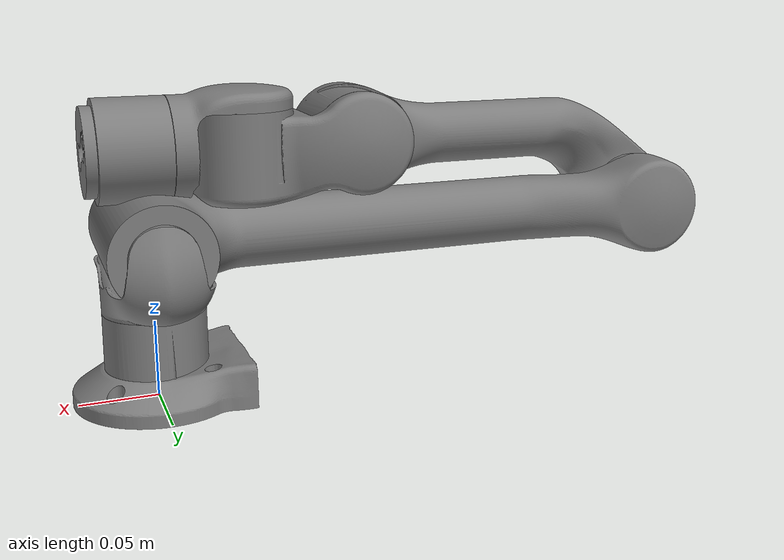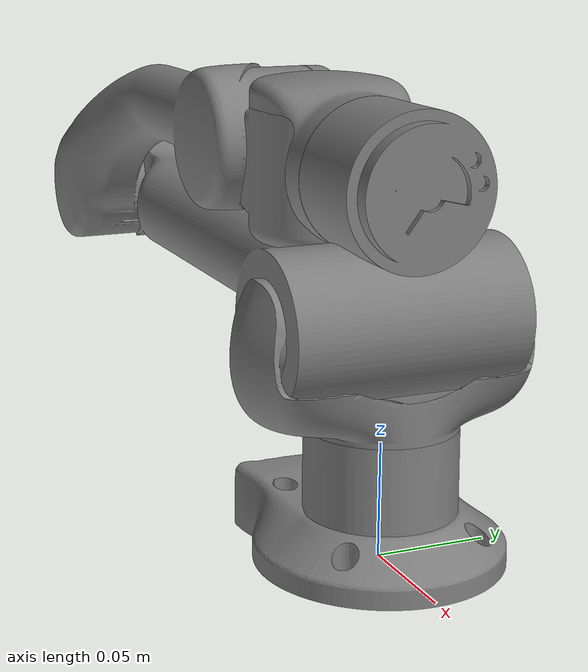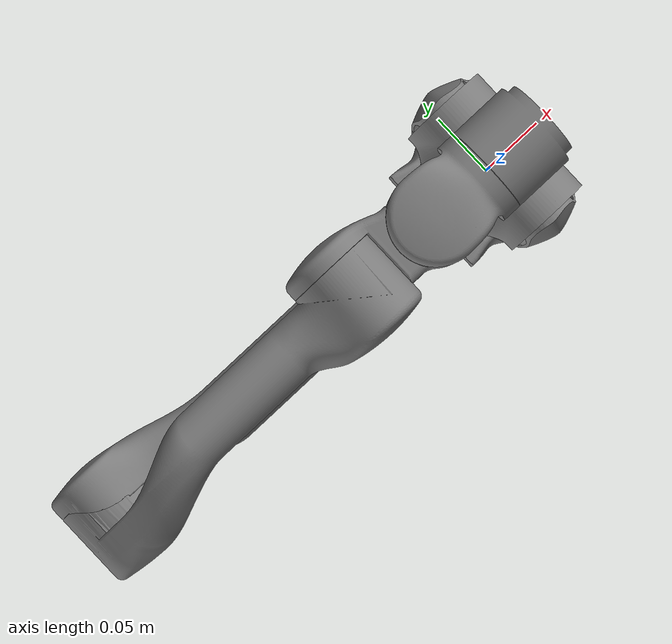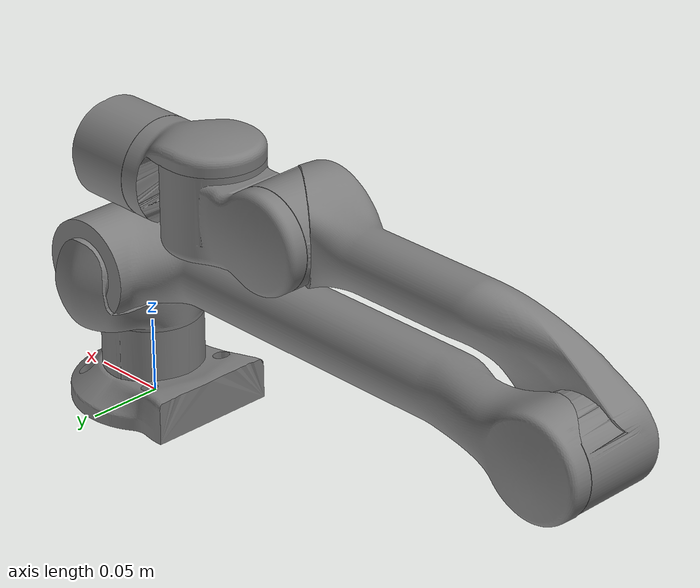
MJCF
<?xml version="1.0" ?>
<mujoco model="z1">
	<compiler meshdir="z1/meshes" texturedir="z1/textures" angle="radian" autolimits="true" balanceinertia="true" boundmass="0.000001" boundinertia="0.000001"/>
	<default>
		<default class="visual">
			<geom contype="0" conaffinity="0"/>
		</default>
		<default class="collision">
			<geom rgba="1.0 0.0 0.0 0.0"/>
		</default>
	</default>
	<asset>
		<mesh name="z1_Link00" file="stl/z1_Link00.stl" scale="1.0 1.0 1.0"/>
		<mesh name="z1_Link01" file="stl/z1_Link01.stl" scale="1.0 1.0 1.0"/>
		<mesh name="z1_Link02" file="stl/z1_Link02.stl" scale="1.0 1.0 1.0"/>
		<mesh name="z1_Link03" file="stl/z1_Link03.stl" scale="1.0 1.0 1.0"/>
		<mesh name="z1_Link04" file="stl/z1_Link04.stl" scale="1.0 1.0 1.0"/>
		<mesh name="z1_Link05" file="stl/z1_Link05.stl" scale="1.0 1.0 1.0"/>
		<mesh name="z1_Link06" file="stl/z1_Link06.stl" scale="1.0 1.0 1.0"/>
	</asset>
	<worldbody>
		<body name="z1" pos="0.0 0.0 0.0" quat="1.0 0.0 0.0 0.0">
			<body name="link00" pos="0.0 0.0 0.0" quat="1.0 0.0 0.0 0.0">
				<geom name="Geom_0" type="mesh" pos="-0.005520758684724569 1.8631500608989882e-07 0.0215991772711277" quat="1.0212026609224267e-05 0.680168092250824 -1.1006088243448175e-05 0.7330561876296997" mesh="z1_Link00" class="visual"/>
				<geom name="Geom_1" type="cylinder" pos="0.0 0.0 0.025499999523162842" quat="1.0 0.0 0.0 0.0" size="0.032499998807907104 0.025499999523162842 0.0" class="collision"/>
				<body name="link01" pos="0.0 0.0 0.05849999934434891" quat="1.0 0.0 0.0 0.0">
					<inertial mass="0.6733260154724121" pos="2.4700000267330324e-06 -0.00025198000366799533 0.023171700537204742" quat="0.7085776925086975 0.7056326866149902 0.00028146186377853155 -0.00035592683707363904" diaginertia="0.001283279969356954 0.0008393619791604578 0.0007193079800345004"/>
					<geom name="Geom_2" type="mesh" pos="-1.1448399561686529e-08 1.5960639032641666e-08 0.02298690192401409" quat="0.5 0.5 -0.5 0.5" mesh="z1_Link01" class="visual"/>
					<joint name="joint1" type="hinge" pos="0.0 0.0 0.0" range="-2.617990016937256 2.617990016937256" axis="0.0 0.0 1.0"/>
					<body name="link02" pos="0.0 0.0 0.04500000178813934" quat="1.0 0.0 0.0 0.0">
						<inertial mass="1.1913199424743652" pos="-0.11012600362300873 0.002400289988145232 0.0015826600138098001" quat="0.0074805766344070435 0.7070916891098022 -0.011447294615209103 0.7069896459579468" diaginertia="0.024661200121045113 0.024311300367116928 0.001004679943434894"/>
						<geom name="Geom_3" type="mesh" pos="-0.12055718153715134 0.0042074634693562984 -1.9866467937390553e-06" quat="0.019285952672362328 0.7068355083465576 -0.01935543678700924 0.7068500518798828" mesh="z1_Link02" class="visual"/>
						<geom name="Geom_4" type="cylinder" pos="0.0 0.0 0.0" quat="0.7071067690849304 0.7071067690849304 0.0 0.0" size="0.032499998807907104 0.050999999046325684 0.0" class="collision"/>
						<geom name="Geom_5" type="cylinder" pos="-0.16249999403953552 0.0 0.0" quat="0.7071067690849304 0.0 0.7071067690849304 0.0" size="0.02250000089406967 0.11749999970197678 0.0" class="collision"/>
						<geom name="Geom_6" type="cylinder" pos="-0.3499999940395355 0.0 0.0" quat="0.7071067690849304 0.7071067690849304 0.0 0.0" size="0.032499998807907104 0.025499999523162842 0.0" class="collision"/>
						<joint name="joint2" type="hinge" pos="0.0 0.0 0.0" range="0.0 2.967060089111328" axis="0.0 1.0 0.0"/>
						<body name="link03" pos="-0.3499999940395355 0.0 0.0" quat="1.0 0.0 0.0 0.0">
							<inertial mass="0.8394089937210083" pos="0.10609199851751328 -0.005418150220066309 0.03476380184292793" quat="0.5405570864677429 0.44357505440711975 0.42631906270980835 0.5738390684127808" diaginertia="0.009543649852275848 0.009387110359966755 0.0005584320169873536"/>
							<geom name="Geom_7" type="mesh" pos="0.1013498529791832 -0.005292060319334269 0.03454930707812309" quat="0.570032000541687 0.4204105734825134 0.453186959028244 0.5412393808364868" mesh="z1_Link03" class="visual"/>
							<geom name="Geom_8" type="cylinder" pos="0.12800000607967377 0.0 0.054999999701976776" quat="0.7071067690849304 0.0 0.7071067690849304 0.0" size="0.019999999552965164 0.057999998331069946 0.0" class="collision"/>
							<geom name="Geom_9" type="cylinder" pos="0.22050000727176666 0.0 0.054999999701976776" quat="0.5 -0.5 0.5 0.5" size="0.032499998807907104 0.029500000178813934 0.0" class="collision"/>
							<joint name="joint3" type="hinge" pos="0.0 0.0 0.0" range="-2.8797900676727295 0.0" axis="0.0 1.0 0.0"/>
							<body name="link04" pos="0.21799999475479126 0.0 0.05700000002980232" quat="1.0 0.0 0.0 0.0">
								<inertial mass="0.5640460252761841" pos="0.04366679862141609 0.003647380042821169 -0.0017019199440255761" quat="0.03908350318670273 0.7264450192451477 -0.05267870053648949 0.6840870380401611" diaginertia="0.0009816560195758939 0.0009405299788340926 0.0003026550111826509"/>
								<geom name="Geom_10" type="mesh" pos="0.05102463439106941 0.007050307933241129 -0.005275116767734289" quat="0.5692657232284546 0.5872085094451904 0.44356632232666016 0.3665674030780792" mesh="z1_Link04" class="visual"/>
								<geom name="Geom_11" type="cylinder" pos="0.07199999690055847 0.0 0.0" quat="1.0 0.0 0.0 0.0" size="0.032499998807907104 0.03350000083446503 0.0" class="collision"/>
								<joint name="joint4" type="hinge" pos="0.0 0.0 0.0" range="-1.5184400081634521 1.5184400081634521" axis="0.0 1.0 0.0"/>
								<body name="link05" pos="0.07000000029802322 0.0 0.0" quat="1.0 0.0 0.0 0.0">
									<inertial mass="0.38938501477241516" pos="0.031215300783514977 0.0 0.006463159807026386" quat="0.46220502257347107 0.535209059715271 0.537850022315979 0.4589500427246094" diaginertia="0.0005589610082097352 0.0005473169730976224 0.0001673319929977879"/>
									<geom name="Geom_12" type="mesh" pos="0.022277723997831345 3.547329470166005e-07 0.01343035139143467" quat="-7.903884579718579e-06 0.8913171887397766 9.391856110596564e-06 0.4533802568912506" mesh="z1_Link05" class="visual"/>
									<joint name="joint5" type="hinge" pos="0.0 0.0 0.0" range="-1.3438999652862549 1.3438999652862549" axis="0.0 0.0 1.0"/>
									<body name="link06" pos="0.04919999837875366 0.0 0.0" quat="1.0 0.0 0.0 0.0">
										<inertial mass="0.2887580096721649" pos="0.024156900122761726 -0.0001735499972710386 -0.0014387599658221006" quat="0.9987789988517761 0.04577350243926048 -0.0066371699795126915 0.017354801297187805" diaginertia="0.0001833300048019737 0.00014746400120202452 0.00014678599836770445"/>
										<geom name="Geom_13" type="mesh" pos="0.024687860161066055 4.7171302867354825e-05 1.948836143128574e-05" quat="0.5553708076477051 0.8315573930740356 -0.004831449128687382 -0.007229561917483807" mesh="z1_Link06" class="visual"/>
										<geom name="Geom_14" type="cylinder" pos="0.025499999523162842 0.0 0.0" quat="0.7071067690849304 0.0 0.7071067690849304 0.0" size="0.032499998807907104 0.025499999523162842 0.0" class="collision"/>
										<joint name="joint6" type="hinge" pos="0.0 0.0 0.0" range="-2.792530059814453 2.792530059814453" axis="1.0 0.0 0.0"/>
									</body>
								</body>
							</body>
						</body>
					</body>
				</body>
			</body>
		</body>
	</worldbody>
	<equality/>
</mujoco>
